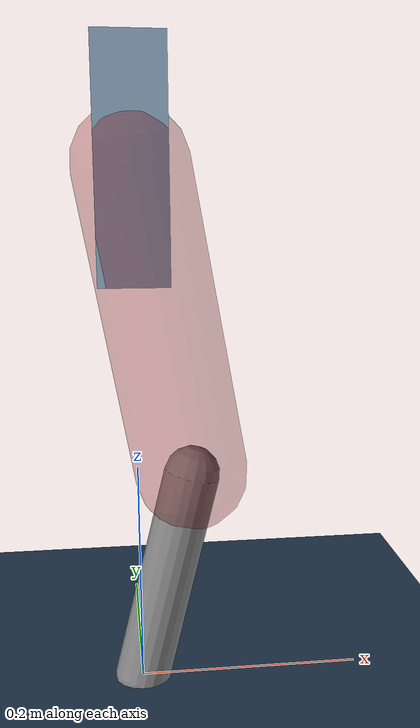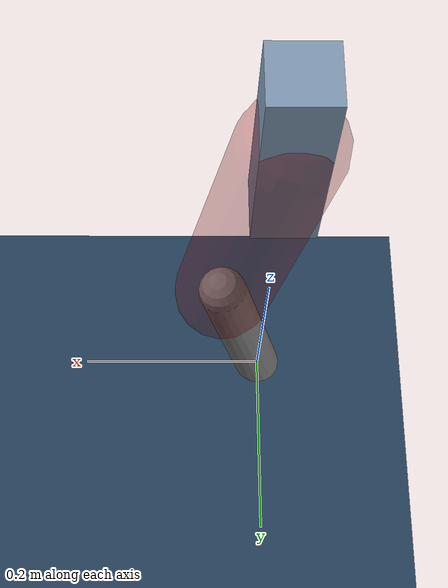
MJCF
<mujoco model="Hopper2D">
	<compiler inertiafromgeom="true" angle="radian" />
	<option timestep="0.001" integrator="implicit" cone="elliptic" solver="Newton" tolerance="1e-10" />

	<default>
		<geom contype="1" conaffinity="1" condim="3" friction="2 0.005 0.0001" solref="0.005 1" />
		<joint limited="true" damping="0.1" />
	</default>

	<asset>
		<texture name="skybox" type="skybox" builtin="gradient" rgb1=".4 .6 .8" rgb2="0 0 0" width="800" height="800" />
		<texture name="grid" type="2d" builtin="checker" rgb1=".1 .2 .3" rgb2=".2 .3 .4" width="300" height="300" mark="edge" markrgb=".2 .3 .4" />
		<material name="ground" texture="grid" texrepeat="1 1" texuniform="true" reflectance="0.1" />
		<material name="leg" rgba="0.5 0.6 0.7 1" />
	</asset>

	<worldbody>

		<geom name="floor" type="plane" size="5 5 0.25" material="ground" />

		<light directional="false" diffuse="0.8 0.8 0.8" specular="0.3 0.3 0.3" pos="0 0 2" dir="0 0 -1" />
		<light mode="targetbodycom" target="base" directional="false" diffuse="0.8 0.8 0.8" specular="0.3 0.3 0.3" pos="0 0 2" dir="0 0 -1" />

		<camera name="fixed" pos="0 -2 1" xyaxes="1 0 0 0 0 1" />
		<camera name="tracking" mode="trackcom" pos="0 -3 1" />

		<body name="root" pos="0 0 0.4612935390656623">
			<joint name="slide_x" type="slide" axis="1 0 0" range="-100 100" />
			<joint name="slide_z" type="slide" axis="0 0 1" range="0 10" />

			<body name="base" pos="0 0 0">
				<geom name="torso" type="box" size="0.03 0.03 0.1" mass="1.9060000000000001" material="leg" />

				<body name="link1" pos="0 0 0" euler="0 1.3953209598691723 0">
					<joint type="hinge" axis="0 -1 0" pos="0 0 0" name="hinge1" limited="true" range="-3.14 3.14" stiffness="0" damping="0.1" />
					<geom name="thigh" type="capsule" fromto="0 0 0 0.2729451898958576 0 0" size="0.05" rgba="0.5 0 0 0.3" mass="0.9164520127188154" />

					<body name="link2" pos="0.2729451898958576 0 0" euler="0 0.41808083354647274 0">
						<joint type="hinge" axis="0 -1 0" pos="0 0 0" name="hinge2" limited="true" range="-3.14 3.14" stiffness="0" damping="0.1" />
						<geom name="shank" type="capsule" fromto="0 0 0 0.19834834916980468 0 0" size="0.025" mass="0.3995135142528242" />

					</body>
				</body>
			</body>
		</body>
	</worldbody>

	<actuator>
		<motor name="torque1" joint="hinge1" ctrlrange="-47.36274287064977 47.36274287064977" ctrllimited="true" gear="1" />
		<motor name="torque2" joint="hinge2" ctrlrange="-15.072194621192919 15.072194621192919" ctrllimited="true" gear="1" />
	</actuator>
</mujoco>
